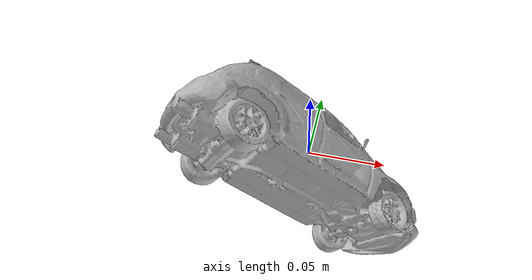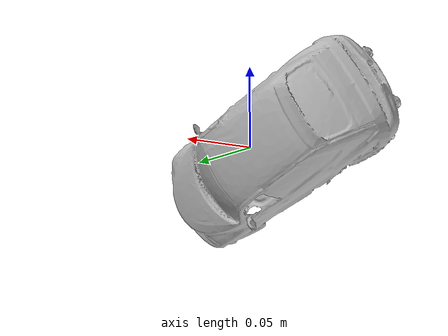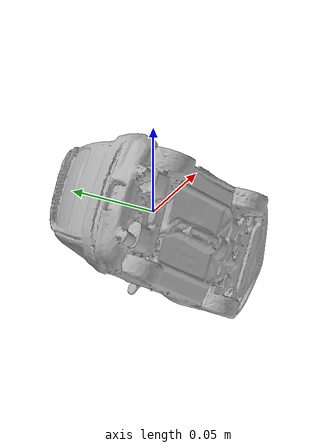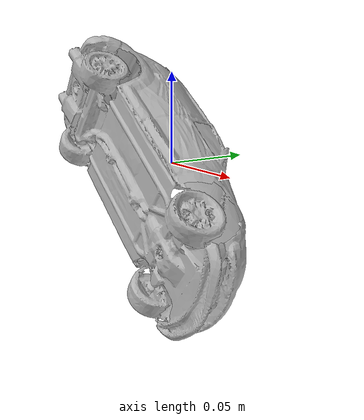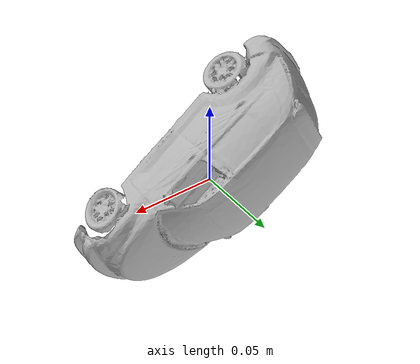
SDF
<?xml version='1.0'?>
<sdf version="1.4">
  <model name="ToyCarYelloq">
    <static>false</static>
    <link name="link">
      <inertial>
        <pose>-0.00761336616451355 -0.010286933424060736 -0.002263702563801429 0.9282488861808781 -0.0656676633259886 -1.6157967806201698</pose>
        <mass>0.0648871279643427</mass>
        <inertia>
          <ixx>0.00015434364244294418</ixx>
          <ixy>-1.309163270058914e-20</ixy>
          <ixz>-4.574636784725924e-21</ixz>
          <iyy>0.0001469303990155493</iyy>
          <iyz>2.7747530046718165e-21</iyz>
          <izz>4.384059112042411e-05</izz>
        </inertia>
      </inertial>
      <collision name="collision">
        <geometry>
          <mesh>
            <!-- Use a downsampled mesh for collisions -->
            <uri>model:///ToyCarYelloq/ToyCarYelloq_250_collision.obj</uri>
	        </mesh>
        </geometry>
        <surface>
      </surface>
      </collision>
      <visual name="visual">
        <geometry>
          <mesh>
            <uri>model:///ToyCarYelloq/ToyCarYelloq_25k_tex.obj</uri>
	        </mesh>
        </geometry>
        <material>
          <script>
            <uri>model:///ToyCarYelloq/ToyCarYelloq.material</uri>
            <name>ToyCarYelloq</name>
          </script>
        </material>
      </visual>
    </link>
  </model>
</sdf>
